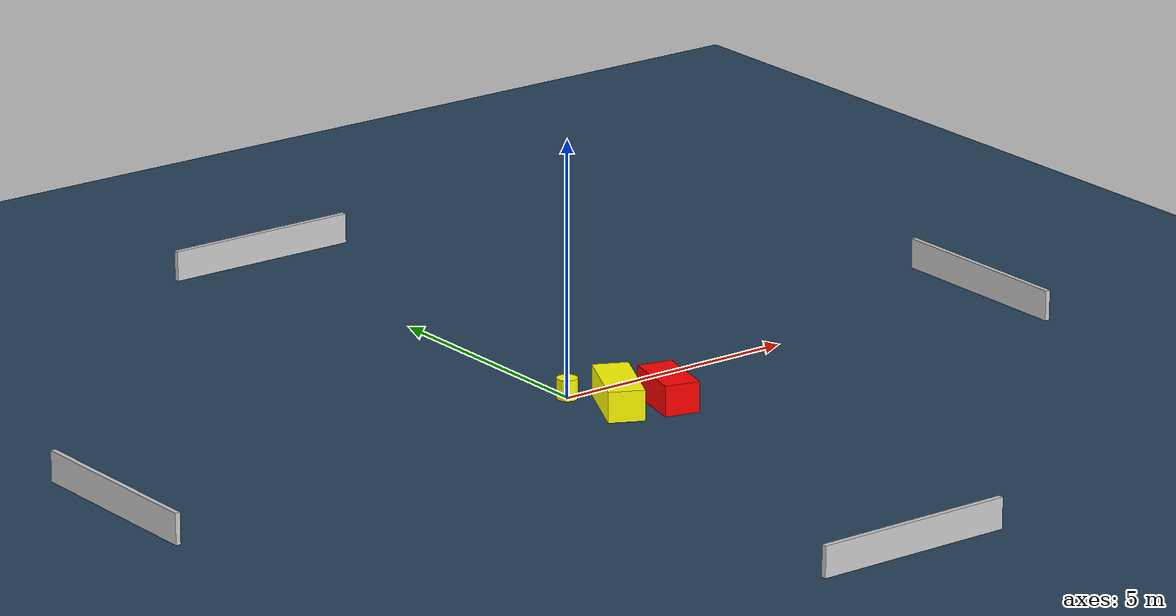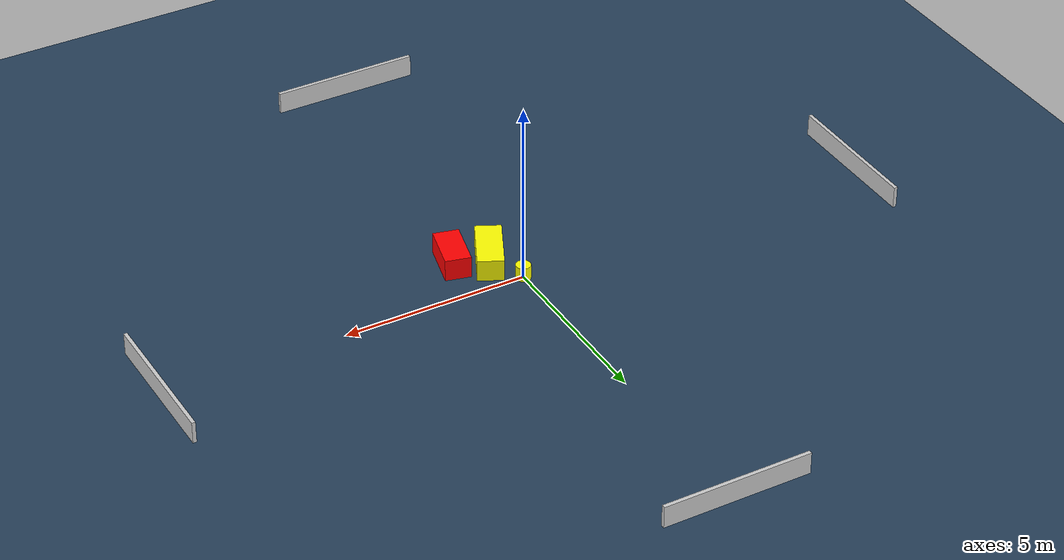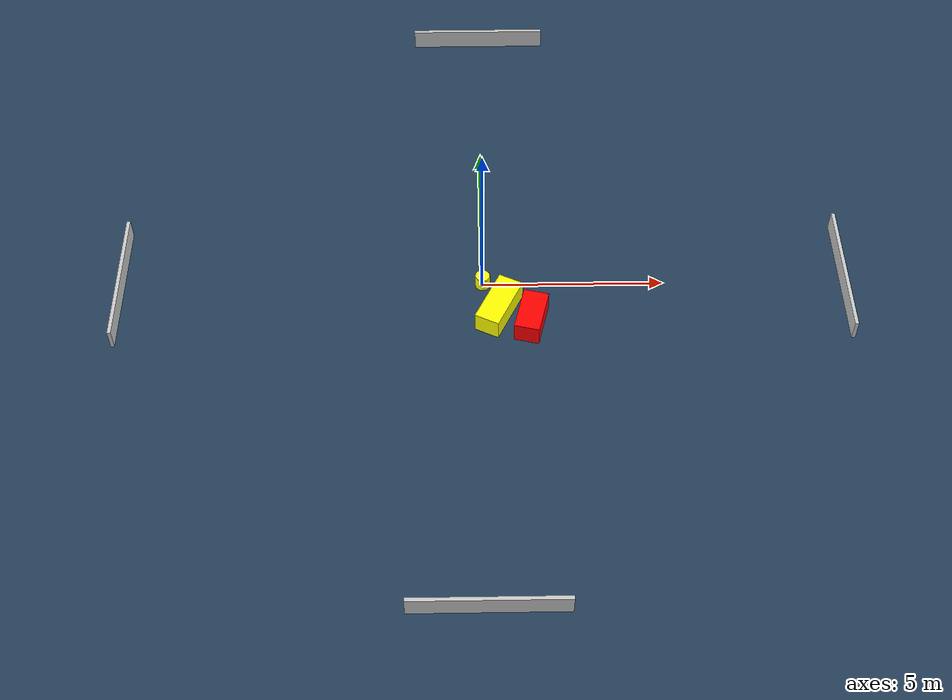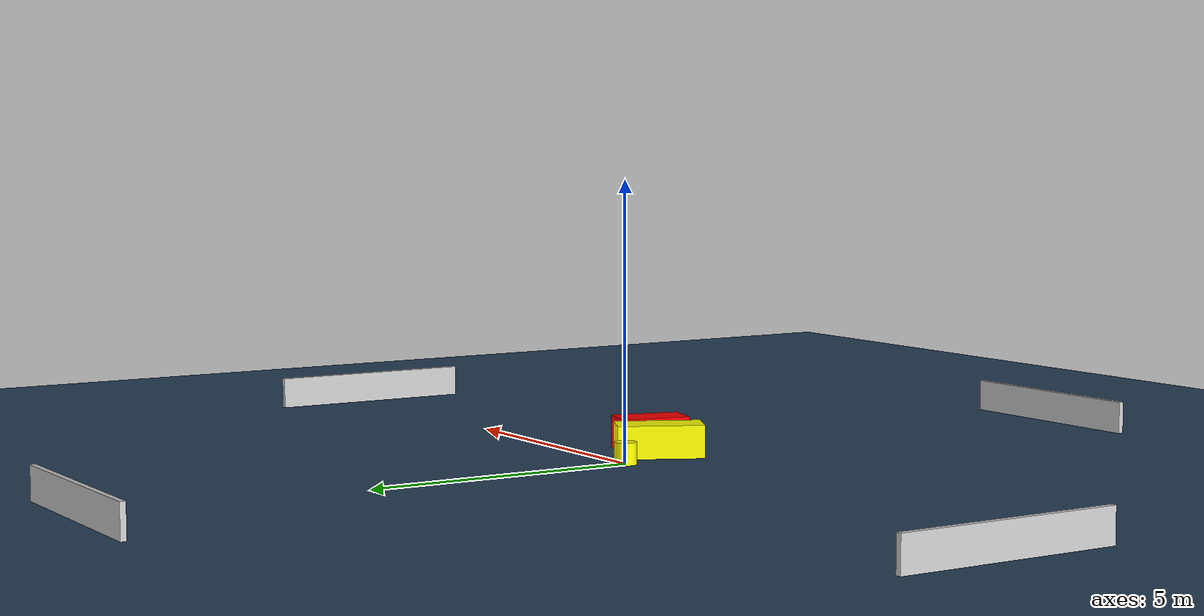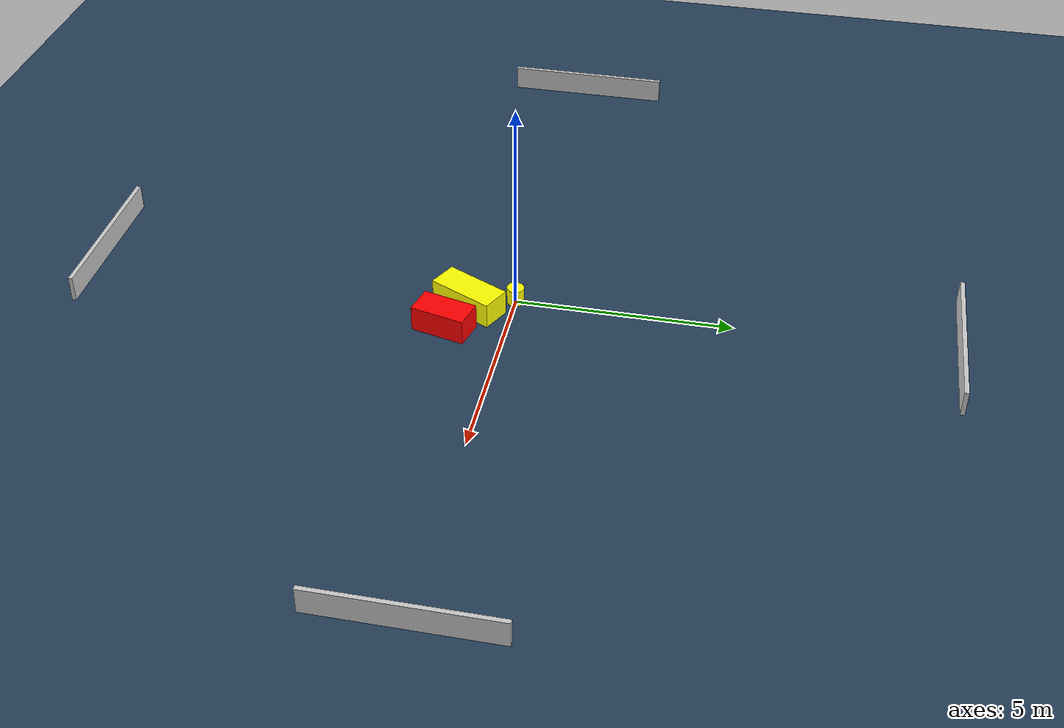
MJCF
<?xml version="1.0" ?>
<mujoco model="generated_environment">
  <option timestep="0.01" integrator="RK4" cone="elliptic"/>
  <default>
    <geom density="1"/>
  </default>
  <asset>
    <texture builtin="gradient" height="3072" name="skybox" rgb1="0.3 0.5 0.7" rgb2="0 0 0" type="skybox" width="512"/>
    <texture builtin="checker" height="300" name="groundplane" rgb1="0.2 0.3 0.4" rgb2="0.1 0.2 0.3" type="2d" width="300"/>
    <material name="groundplane" reflectance="0.2" texrepeat="5 5" texture="groundplane"/>
  </asset>
  <worldbody>
    <light dir="0 0 -1" directional="true" pos="0 0 1.5"/>
    <geom condim="3" friction="0.5 0.005 0.001" material="groundplane" name="floor" pos="0 0 0" size="0 0 0.05" type="plane"/>
    <body name="walls">
      <geom name="wall_1" condim="4" pos="-10.0 0.0 0.3" rgba="0.800000011920929 0.800000011920929 0.800000011920929 1.0" size="0.05 2.0 0.3" type="box"/>
      <geom name="wall_2" condim="4" pos="10.0 0.0 0.3" rgba="0.800000011920929 0.800000011920929 0.800000011920929 1.0" size="0.05 2.0 0.3" type="box"/>
      <geom name="wall_3" condim="4" pos="0.0 -10.0 0.3" rgba="0.800000011920929 0.800000011920929 0.800000011920929 1.0" size="2.0 0.05 0.3" type="box"/>
      <geom name="wall_4" condim="4" pos="0.0 10.0 0.3" rgba="0.800000011920929 0.800000011920929 0.800000011920929 1.0" size="2.0 0.05 0.3" type="box"/>
    </body>
    <body name="robot">
      <joint name="joint_x" type="slide" pos="0 0 0" axis="1 0 0"/>
      <joint name="joint_y" type="slide" pos="0 0 0" axis="0 1 0"/>
      <geom name="robot" type="cylinder" pos="0.0 0.0 0.2" size="0.2 0.2 0.0" mass="5.0" friction="1.0 0.005 0.0001" condim="4" rgba="1.0 1.0 0.0 1.0"/>
    </body>
    <body name="obstacle_1_movable">
      <geom name="obstacle_1_movable" condim="4" pos="0.4309708855481415 -0.9935633025447359 0.3" euler="0 0 63.8273176650318" friction="0.0 0.005 0.001" rgba="1.0 1.0 0.0 1.0" size="0.7898072310066802 0.34911821520419084 0.3" type="box" mass="0.1"/>
      <joint type="free"/>
    </body>
    <body name="obstacle_2_static">
      <geom name="obstacle_2_static" condim="4" pos="1.3038604906564761 -1.3763582027859123 0.3" euler="0 0 166.1573474337318" friction="0.0 0.005 0.001" rgba="1.0 0.0 0.0 1.0" size="0.3468636383133945 0.6411475370109057 0.3" type="box"/>
    </body>
  </worldbody>
  <actuator>
    <motor name="actuator_x" joint="joint_x" gear="1" ctrlrange="-1 1"/>
    <motor name="actuator_y" joint="joint_y" gear="1" ctrlrange="-1 1"/>
  </actuator>
</mujoco>
